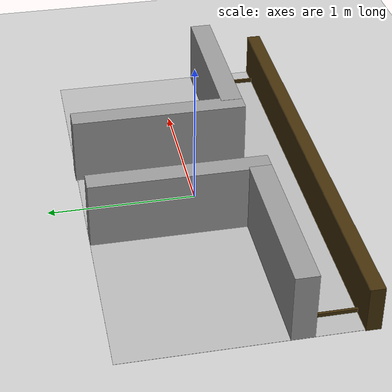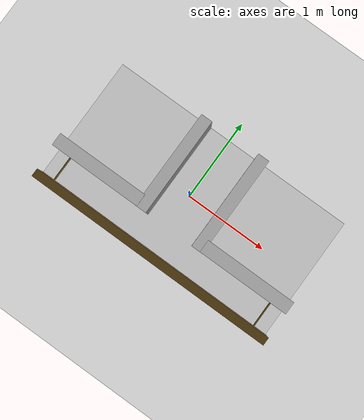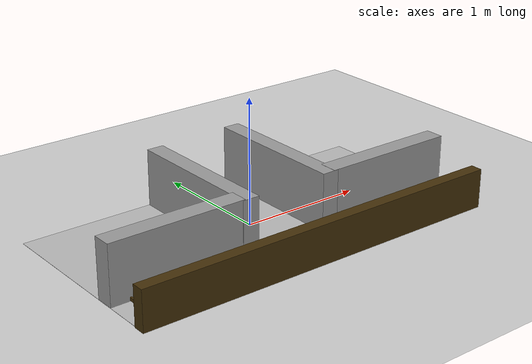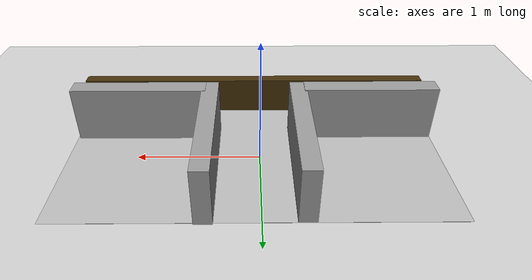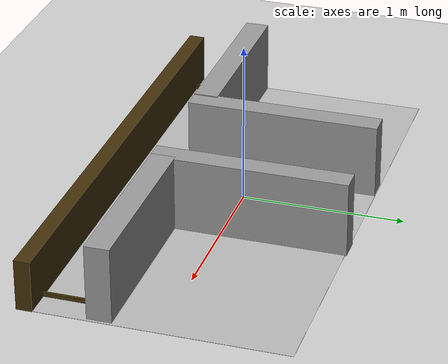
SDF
<sdf version="1.6">
 <world name="default">
  <light name="sun" type="directional">
   <pose>0 0 10 0 -0 0</pose>
   <diffuse>0.8 0.8 0.8 1</diffuse>
   <specular>0.2 0.2 0.2 1</specular>
   <attenuation>
    <range>1000</range>
    <constant>0.9</constant>
    <linear>0.01</linear>
    <quadratic>0.001</quadratic>
   </attenuation>
   <direction>-0.5 0.1 -0.9</direction>
   <spot><inner_angle>0</inner_angle><outer_angle>0</outer_angle><falloff>0</falloff></spot>
  </light>
  <gravity>0 0 -9.8</gravity>
  <magnetic_field>6e-06 2.3e-05 -4.2e-05</magnetic_field>
  <atmosphere type="adiabatic"/>
  <physics type="ode">
   <max_step_size>0.001</max_step_size>
   <real_time_factor>1</real_time_factor>
   <real_time_update_rate>1000</real_time_update_rate>
  </physics>
  <scene><ambient>0.4 0.4 0.4 1</ambient><background>0.7 0.7 0.7 1</background><shadows>1</shadows></scene>
  <spherical_coordinates>
   <surface_model>EARTH_WGS84</surface_model>
   <latitude_deg>0</latitude_deg>
   <longitude_deg>0</longitude_deg>
   <elevation>0</elevation>
   <heading_deg>0</heading_deg>
  </spherical_coordinates>
  <model name="my_ground_plane">
   <static>1</static>
   <link name="link">
    <collision name="collision">
     <geometry><plane><normal>0 0 1</normal><size>3.048 1.524</size></plane></geometry>
     <surface><friction><ode><mu>100</mu><mu2>50</mu2></ode></friction></surface>
    </collision>
    <visual name="visual">
     <cast_shadows>0</cast_shadows>
     <geometry><plane><normal>0 0 1</normal><size>3.048 1.524</size></plane></geometry>
     <material>
      <script>
       <uri>model://my_ground_plane/materials/scripts</uri>
       <uri>model://my_ground_plane/materials/textures</uri>
       <name>MyGroundPlane/Image</name>
      </script>
     </material>
    </visual>
   </link>
   <pose>0.046072 -4.9e-05 0 0 -0 0</pose>
  </model>
  <model name="wall_01">
   <link name="link">
    <inertial>
     <mass>1</mass>
     <inertia>
      <ixx>0.166667</ixx>
      <ixy>0</ixy>
      <ixz>0</ixz>
      <iyy>0.166667</iyy>
      <iyz>0</iyz>
      <izz>0.166667</izz>
     </inertia>
    </inertial>
    <visual name="visual">
     <geometry><box><size>3.06042 0.096313 0.313419</size></box></geometry>
     <material>
      <script><name>Gazebo/Grey</name><uri>file://media/materials/scripts/gazebo.material</uri></script>
      <shader type="pixel"><normal_map>__default__</normal_map></shader>
      <ambient>0.267 0.188 0.039 1</ambient>
      <diffuse>0.7 0.7 0.7 1</diffuse>
      <specular>0.01 0.01 0.01 1</specular>
      <emissive>0 0 0 1</emissive>
     </material>
    </visual>
    <collision name="collision">
     <geometry><box><size>3.06042 0.096313 0.313419</size></box></geometry>
     <surface>
      <friction>
       <ode><mu>1</mu><mu2>1</mu2><fdir1>0 0 0</fdir1><slip1>0</slip1><slip2>0</slip2></ode>
       <torsional>
        <coefficient>1</coefficient>
        <patch_radius>0</patch_radius>
        <surface_radius>0</surface_radius>
        <use_patch_radius>1</use_patch_radius>
        <ode><slip>0</slip></ode>
       </torsional>
      </friction>
      <bounce><restitution_coefficient>0</restitution_coefficient><threshold>1e+06</threshold></bounce>
      <contact>
       <collide_without_contact>0</collide_without_contact>
       <collide_without_contact_bitmask>1</collide_without_contact_bitmask>
       <collide_bitmask>1</collide_bitmask>
       <ode>
        <soft_cfm>0</soft_cfm>
        <soft_erp>0.2</soft_erp>
        <kp>1e+13</kp>
        <kd>1</kd>
        <max_vel>0.01</max_vel>
        <min_depth>0</min_depth>
       </ode>
       <bullet>
        <split_impulse>1</split_impulse>
        <split_impulse_penetration_threshold>-0.01</split_impulse_penetration_threshold>
        <soft_cfm>0</soft_cfm>
        <soft_erp>0.2</soft_erp>
        <kp>1e+13</kp>
        <kd>1</kd>
       </bullet>
      </contact>
     </surface>
    </collision>
   </link>
   <static>0</static>
   <pose>0.045086 -0.784313 0.156353 5e-06 -0.000233 -0.001514</pose>
  </model>
  <model name="wall_01_1">
   <link name="link">
    <inertial>
     <mass>1</mass>
     <inertia>
      <ixx>0.166667</ixx>
      <ixy>0</ixy>
      <ixz>0</ixz>
      <iyy>0.166667</iyy>
      <iyz>0</iyz>
      <izz>0.166667</izz>
     </inertia>
    </inertial>
    <visual name="visual">
     <geometry><box><size>0.01655 0.306777 0.0254</size></box></geometry>
     <material>
      <script><name>Gazebo/Grey</name><uri>file://media/materials/scripts/gazebo.material</uri></script>
      <shader type="pixel"><normal_map>__default__</normal_map></shader>
      <ambient>0.267 0.188 0.039 1</ambient>
      <diffuse>0.7 0.7 0.7 1</diffuse>
      <specular>0.01 0.01 0.01 1</specular>
      <emissive>0 0 0 1</emissive>
     </material>
    </visual>
    <collision name="collision">
     <geometry><box><size>0.01655 0.306777 0.03781</size></box></geometry>
     <surface>
      <friction>
       <ode><mu>1</mu><mu2>1</mu2><fdir1>0 0 0</fdir1><slip1>0</slip1><slip2>0</slip2></ode>
       <torsional>
        <coefficient>1</coefficient>
        <patch_radius>0</patch_radius>
        <surface_radius>0</surface_radius>
        <use_patch_radius>1</use_patch_radius>
        <ode><slip>0</slip></ode>
       </torsional>
      </friction>
      <bounce><restitution_coefficient>0</restitution_coefficient><threshold>1e+06</threshold></bounce>
      <contact>
       <collide_without_contact>0</collide_without_contact>
       <collide_without_contact_bitmask>1</collide_without_contact_bitmask>
       <collide_bitmask>1</collide_bitmask>
       <ode>
        <soft_cfm>0</soft_cfm>
        <soft_erp>0.2</soft_erp>
        <kp>1e+13</kp>
        <kd>1</kd>
        <max_vel>0.01</max_vel>
        <min_depth>0</min_depth>
       </ode>
       <bullet>
        <split_impulse>1</split_impulse>
        <split_impulse_penetration_threshold>-0.01</split_impulse_penetration_threshold>
        <soft_cfm>0</soft_cfm>
        <soft_erp>0.2</soft_erp>
        <kp>1e+13</kp>
        <kd>1</kd>
       </bullet>
      </contact>
     </surface>
    </collision>
   </link>
   <static>0</static>
   <pose>1.40852 -0.583926 0.018905 0 0 -8.1e-05</pose>
  </model>
  <model name="wall_01_1_clone">
   <link name="link">
    <inertial>
     <mass>1</mass>
     <inertia>
      <ixx>0.166667</ixx>
      <ixy>0</ixy>
      <ixz>0</ixz>
      <iyy>0.166667</iyy>
      <iyz>0</iyz>
      <izz>0.166667</izz>
     </inertia>
    </inertial>
    <visual name="visual">
     <geometry><box><size>0.01655 0.306777 0.0254</size></box></geometry>
     <material>
      <script><name>Gazebo/Grey</name><uri>file://media/materials/scripts/gazebo.material</uri></script>
      <shader type="pixel"><normal_map>__default__</normal_map></shader>
      <ambient>0.267 0.188 0.039 1</ambient>
      <diffuse>0.7 0.7 0.7 1</diffuse>
      <specular>0.01 0.01 0.01 1</specular>
      <emissive>0 0 0 1</emissive>
     </material>
    </visual>
    <collision name="collision">
     <geometry><box><size>0.01655 0.306777 0.03781</size></box></geometry>
     <surface>
      <friction>
       <ode><mu>1</mu><mu2>1</mu2><fdir1>0 0 0</fdir1><slip1>0</slip1><slip2>0</slip2></ode>
       <torsional>
        <coefficient>1</coefficient>
        <patch_radius>0</patch_radius>
        <surface_radius>0</surface_radius>
        <use_patch_radius>1</use_patch_radius>
        <ode><slip>0</slip></ode>
       </torsional>
      </friction>
      <bounce><restitution_coefficient>0</restitution_coefficient><threshold>1e+06</threshold></bounce>
      <contact>
       <collide_without_contact>0</collide_without_contact>
       <collide_without_contact_bitmask>1</collide_without_contact_bitmask>
       <collide_bitmask>1</collide_bitmask>
       <ode>
        <soft_cfm>0</soft_cfm>
        <soft_erp>0.2</soft_erp>
        <kp>1e+13</kp>
        <kd>1</kd>
        <max_vel>0.01</max_vel>
        <min_depth>0</min_depth>
       </ode>
       <bullet>
        <split_impulse>1</split_impulse>
        <split_impulse_penetration_threshold>-0.01</split_impulse_penetration_threshold>
        <soft_cfm>0</soft_cfm>
        <soft_erp>0.2</soft_erp>
        <kp>1e+13</kp>
        <kd>1</kd>
       </bullet>
      </contact>
     </surface>
    </collision>
   </link>
   <static>0</static>
   <pose>-1.31925 -0.584799 0.018905 0 0 -8.1e-05</pose>
  </model>
  <model name="unit_box">
   <pose>0.410679 0.170848 0.230901 0 -0 0</pose>
   <link name="link">
    <inertial>
     <mass>1</mass>
     <inertia>
      <ixx>0.166667</ixx>
      <ixy>0</ixy>
      <ixz>0</ixz>
      <iyy>0.166667</iyy>
      <iyz>0</iyz>
      <izz>0.166667</izz>
     </inertia>
    </inertial>
    <collision name="collision"><geometry><box><size>0.138751 1.20039 0.467671</size></box></geometry></collision>
    <visual name="visual">
     <geometry><box><size>0.138751 1.20039 0.467671</size></box></geometry>
     <material>
      <script><name>Gazebo/Grey</name><uri>file://media/materials/scripts/gazebo.material</uri></script>
     </material>
    </visual>
   </link>
  </model>
  <model name="unit_box_clone">
   <pose>-0.321648 0.163197 0.226017 0 -0 0</pose>
   <link name="link">
    <inertial>
     <mass>1</mass>
     <inertia>
      <ixx>0.166667</ixx>
      <ixy>0</ixy>
      <ixz>0</ixz>
      <iyy>0.166667</iyy>
      <iyz>0</iyz>
      <izz>0.166667</izz>
     </inertia>
    </inertial>
    <collision name="collision"><geometry><box><size>0.138751 1.19104 0.467671</size></box></geometry></collision>
    <visual name="visual">
     <geometry><box><size>0.138751 1.19104 0.467671</size></box></geometry>
     <material>
      <script><name>Gazebo/Grey</name><uri>file://media/materials/scripts/gazebo.material</uri></script>
     </material>
    </visual>
   </link>
  </model>
  <model name="unit_box_0">
   <pose>1 -0.352961 0.222347 0 -0 0</pose>
   <link name="link">
    <inertial>
     <mass>1</mass>
     <inertia>
      <ixx>0.166667</ixx>
      <ixy>0</ixy>
      <ixz>0</ixz>
      <iyy>0.166667</iyy>
      <iyz>0</iyz>
      <izz>0.166667</izz>
     </inertia>
    </inertial>
    <collision name="collision"><geometry><box><size>1.10627 0.149642 0.486426</size></box></geometry></collision>
    <visual name="visual">
     <geometry><box><size>1.10627 0.149642 0.486426</size></box></geometry>
     <material>
      <script><name>Gazebo/Grey</name><uri>file://media/materials/scripts/gazebo.material</uri></script>
     </material>
    </visual>
   </link>
  </model>
  <model name="unit_box_0_clone">
   <pose>-0.922987 -0.355961 0.222347 0 -0 0</pose>
   <link name="link">
    <inertial>
     <mass>1</mass>
     <inertia>
      <ixx>0.166667</ixx>
      <ixy>0</ixy>
      <ixz>0</ixz>
      <iyy>0.166667</iyy>
      <iyz>0</iyz>
      <izz>0.166667</izz>
     </inertia>
    </inertial>
    <collision name="collision"><geometry><box><size>1.10627 0.149642 0.486426</size></box></geometry></collision>
    <visual name="visual">
     <geometry><box><size>1.10627 0.149642 0.486426</size></box></geometry>
     <material>
      <script><name>Gazebo/Grey</name><uri>file://media/materials/scripts/gazebo.material</uri></script>
     </material>
    </visual>
   </link>
  </model>
  <model name="ground_plane">
   <static>1</static>
   <link name="link">
    <collision name="collision">
     <geometry><plane><normal>0 0 1</normal><size>100 100</size></plane></geometry>
     <surface>
      <contact><collide_bitmask>65535</collide_bitmask></contact>
      <friction><ode><mu>100</mu><mu2>50</mu2></ode></friction>
     </surface>
    </collision>
    <visual name="visual">
     <cast_shadows>0</cast_shadows>
     <geometry><plane><normal>0 0 1</normal><size>100 100</size></plane></geometry>
     <material>
      <script><uri>file://media/materials/scripts/gazebo.material</uri><name>Gazebo/Grey</name></script>
     </material>
    </visual>
   </link>
  </model>
 </world>
</sdf>
